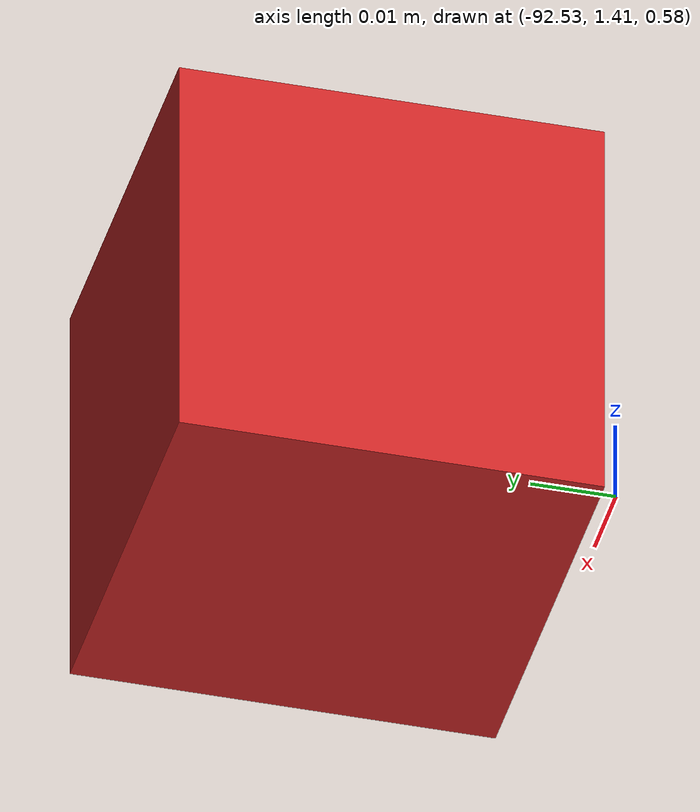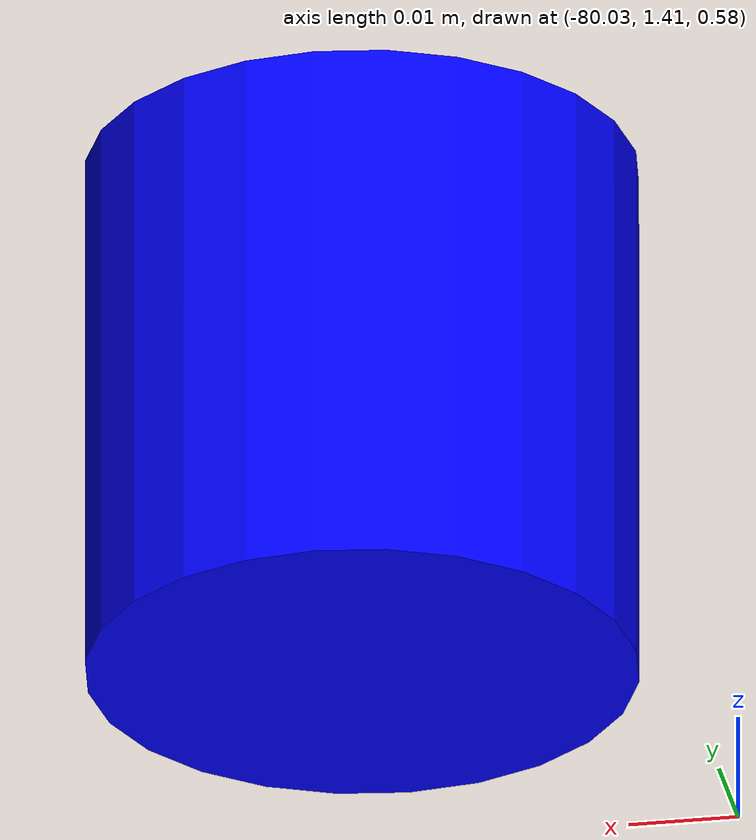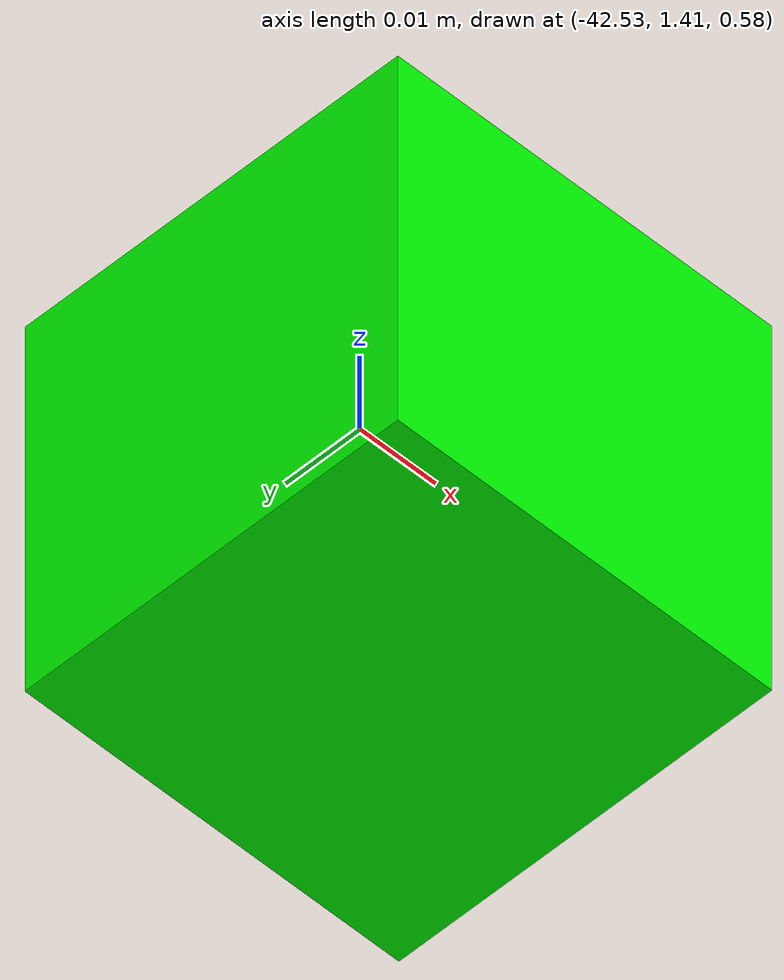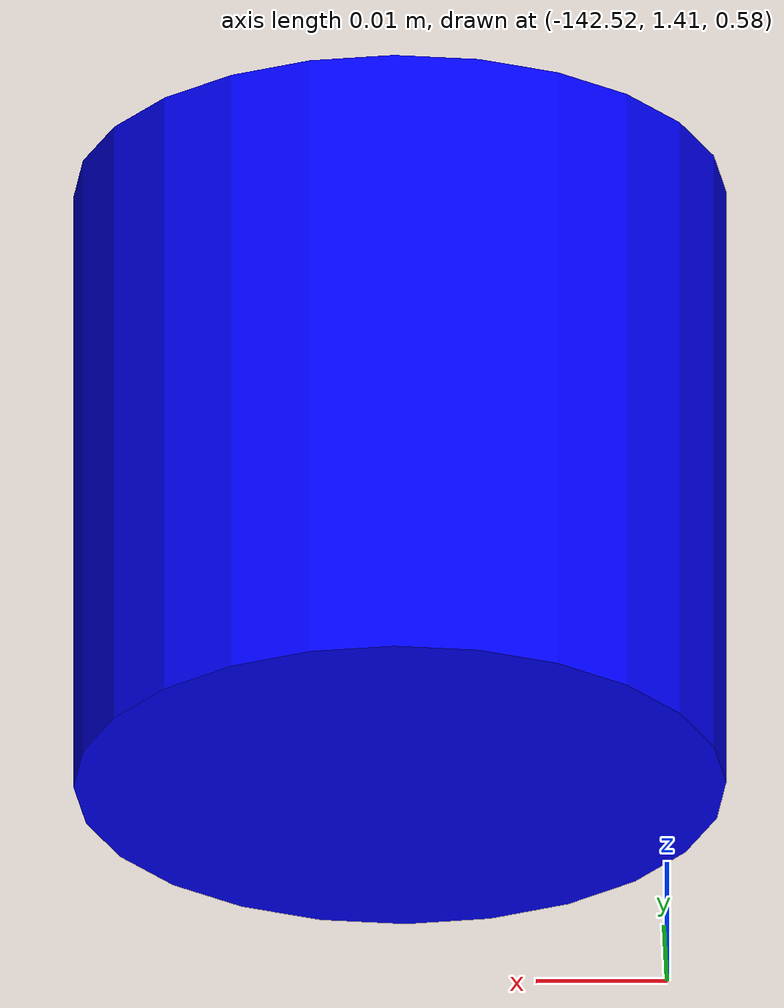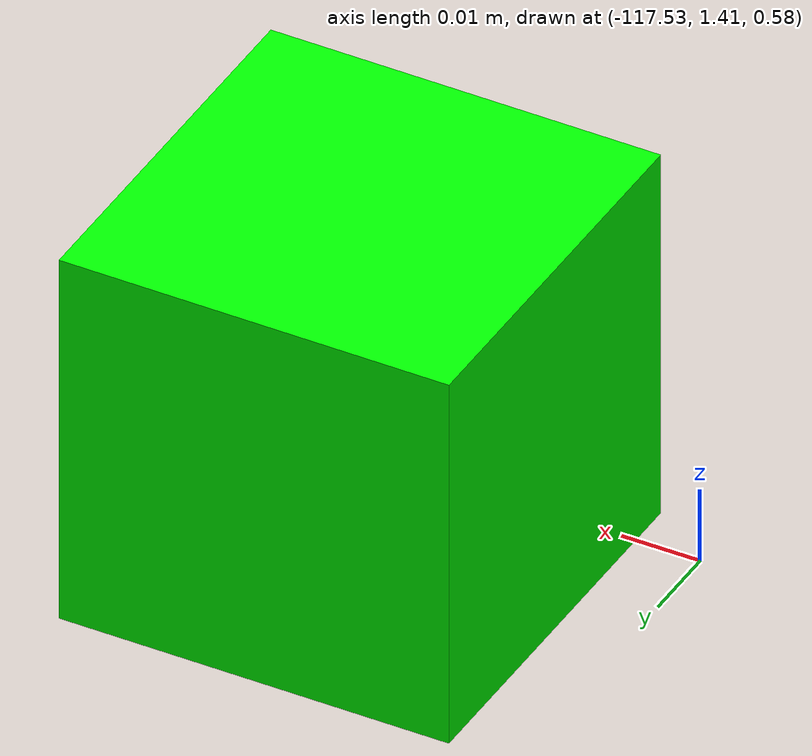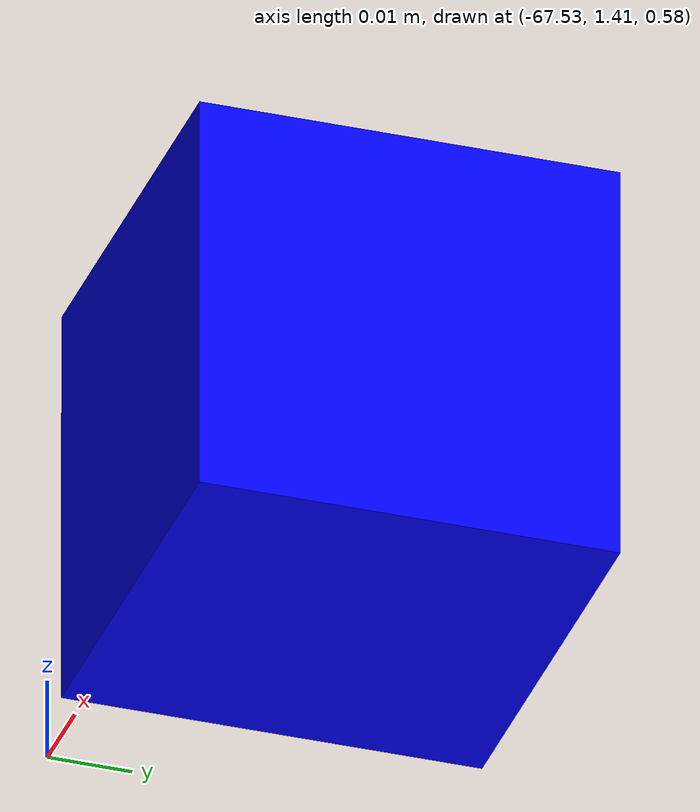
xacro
<robot name="objects">
      <link name="redBox1">
        <inertial>
          <origin xyz="0.11 1.435 0.61" />
          <mass value="0.985" />
          <inertia  ixx="0.0004104" ixy="0.0"  ixz="0.0"  iyy="0.0004104"  iyz="0.0"  izz="0.0004104" />
        </inertial>
        <visual>
          <origin xyz="0.11 1.435 0.61"/>
         <geometry>
           <box size="0.05 0.05 0.05" />
         </geometry>
       </visual>
       <collision>
         <origin xyz="0.11 1.435 0.61"/>
         <geometry>
           <box size="0.05 0.05 0.05" />
         </geometry>
       </collision>
     </link>

     <gazebo reference="redBox1">
       <material>Gazebo/Red</material>
       <kp>100000000.0</kp>
        <kd>1000.0</kd>
        <mu1>100000.0</mu1>
        <mu2>100000.0</mu2>
        <minDepth>0.000001</minDepth>
      </gazebo>

      <link name="redBox0">
        <inertial>
          <origin xyz="-5.00 1.5 0.61" />
          <mass value="0.985" />
          <inertia  ixx="0.0004104" ixy="0.0"  ixz="0.0"  iyy="0.0004104"  iyz="0.0"  izz="0.0004104" />
        </inertial>
        <visual>
          <origin xyz="-5.00 1.5 0.61"/>
         <geometry>
           <box size="0.05 0.05 0.05" />
         </geometry>
       </visual>
       <collision>
         <origin xyz="-5.00 1.5 0.61"/>
         <geometry>
           <box size="0.05 0.05 0.05" />
         </geometry>
       </collision>
     </link>

     <gazebo reference="redBox0">
       <material>Gazebo/Red</material>
      </gazebo>

      <link name="blueBox1">
        <inertial>
          <origin xyz="-17.5 1.435 0.61" />
          <mass value="0.985" />
          <inertia  ixx="0.0004104" ixy="0.0"  ixz="0.0"  iyy="0.0004104"  iyz="0.0"  izz="0.0004104" />
        </inertial>
        <visual>
          <origin xyz="-17.5 1.435 0.61"/>
         <geometry>
           <box size="0.05 0.05 0.05" />
         </geometry>
         <material name="">
                <color rgba="0.0 0.0 1.0 1.0"/>
                <texture filename=""/>
            </material>
       </visual>
       <collision>
         <origin xyz="-17.5 1.435 0.61"/>
         <geometry>
           <box size="0.05 0.05 0.05" />
         </geometry>
       </collision>
     </link>
     <gazebo reference="blueBox1">
       <material>Gazebo/Blue</material>
      </gazebo>

      <joint name="joint0" type="floating">
        <origin xyz="0 0 0" rpy="0 0 0"/>
        <parent link="redBox1"/>
       <child link="redBox0"/>

        <calibration rising="0.0"/>
        <dynamics damping="0.0" friction="0.0"/>
        <limit effort="30" velocity="1.0" lower="-2.2" upper="0.7" />
        <safety_controller k_velocity="10" k_position="15" soft_lower_limit="-2.0" soft_upper_limit="0.5" />
    </joint>

      <joint name="joint1" type="floating">
        <origin xyz="0 0 0" rpy="0 0 0"/>
        <parent link="redBox1"/>
       <child link="blueBox1"/>

        <calibration rising="0.0"/>
        <dynamics damping="0.0" friction="0.0"/>
        <limit effort="30" velocity="1.0" lower="-2.2" upper="0.7" />
        <safety_controller k_velocity="10" k_position="15" soft_lower_limit="-2.0" soft_upper_limit="0.5" />
    </joint>

      <link name="greenCylinder1">
        <inertial>
          <origin xyz="-30 1.435 0.61" />
          <mass value="0.773" />
          <inertia  ixx="0.0002818" ixy="0.0"  ixz="0.0"  iyy="0.0002818"  iyz="0.0"  izz="0.0002416" />
        </inertial>
        <visual>
          <origin xyz="-30 1.435 0.61"/>
         <geometry>
           <cylinder length="0.05" radius="0.025"/>
         </geometry>
         <material name="">
                <color rgba="0.0 1.0 0.0 1.0"/>
                <texture filename=""/>
            </material>
       </visual>
       <collision>
         <origin xyz="-30 1.435 0.61"/>
         <geometry>
           <cylinder length="0.05" radius="0.025"/>
         </geometry>
       </collision>
     </link>
     <gazebo reference="greenCylinder1">
       <material>Gazebo/Green</material>
      </gazebo>

       <joint name="joint2" type="floating">
        <origin xyz="0 0 0" rpy="0 0 0"/>
        <parent link="redBox1"/>
       <child link="greenCylinder1"/>

        <calibration rising="0.0"/>
        <dynamics damping="0.0" friction="0.0"/>
        <limit effort="30" velocity="1.0" lower="-2.2" upper="0.7" />
        <safety_controller k_velocity="10" k_position="15" soft_lower_limit="-2.0" soft_upper_limit="0.5" />
    </joint>

      <link name="greenBox1">
        <inertial>
          <origin xyz="-42.5 1.435 0.61" />
          <mass value="0.985" />
          <inertia  ixx="0.0004104" ixy="0.0"  ixz="0.0"  iyy="0.0004104"  iyz="0.0"  izz="0.0004104" />
        </inertial>
        <visual>
          <origin xyz="-42.5 1.435 0.61"/>
         <geometry>
           <box size="0.05 0.05 0.05" />
         </geometry>
         <material name="">
                <color rgba="0.0 1.0 0.0 1.0"/>
                <texture filename=""/>
            </material>
       </visual>
       <collision>
         <origin xyz="-42.5 1.435 0.61"/>
         <geometry>
           <box size="0.05 0.05 0.05" />
         </geometry>
       </collision>
     </link>
     <gazebo reference="greenBox1">
       <material>Gazebo/Green</material>
      </gazebo>

      <joint name="joint3" type="floating">
        <origin xyz="0 0 0" rpy="0 0 0"/>
        <parent link="redBox1"/>
       <child link="greenBox1"/>

        <calibration rising="0.0"/>
        <dynamics damping="0.0" friction="0.0"/>
        <limit effort="30" velocity="1.0" lower="-2.2" upper="0.7" />
        <safety_controller k_velocity="10" k_position="15" soft_lower_limit="-2.0" soft_upper_limit="0.5" />
    </joint>

    <link name="redCylinder1">
        <inertial>
          <origin xyz="-55 1.435 0.61" />
          <mass value="0.773" />
          <inertia  ixx="0.0002818" ixy="0.0"  ixz="0.0"  iyy="0.0002818"  iyz="0.0"  izz="0.0002416" />
        </inertial>
        <visual>
          <origin xyz="-55 1.435 0.61"/>
         <geometry>
           <cylinder length="0.05" radius="0.025"/>
         </geometry>
         <material name="">
                <color rgba="1.0 0.0 0.0 1.0"/>
                <texture filename=""/>
            </material>
       </visual>
       <collision>
         <origin xyz="-55 1.435 0.61"/>
         <geometry>
           <cylinder length="0.05" radius="0.025"/>
         </geometry>
       </collision>
     </link>
     <gazebo reference="redCylinder1">
       <material>Gazebo/Red</material>
      </gazebo>

       <joint name="joint4" type="floating">
        <origin xyz="0 0 0" rpy="0 0 0"/>
        <parent link="redBox1"/>
       <child link="redCylinder1"/>

        <calibration rising="0.0"/>
        <dynamics damping="0.0" friction="0.0"/>
        <limit effort="30" velocity="1.0" lower="-2.2" upper="0.7" />
        <safety_controller k_velocity="10" k_position="15" soft_lower_limit="-2.0" soft_upper_limit="0.5" />
    </joint>

      <link name="blueBox2">
        <inertial>
          <origin xyz="-67.5 1.435 0.61" />
          <mass value="0.985" />
          <inertia  ixx="0.0004104" ixy="0.0"  ixz="0.0"  iyy="0.0004104"  iyz="0.0"  izz="0.0004104" />
        </inertial>
        <visual>
          <origin xyz="-67.5 1.435 0.61"/>
         <geometry>
           <box size="0.05 0.05 0.05" />
         </geometry>
         <material name="">
                <color rgba="0.0 0.0 1.0 1.0"/>
                <texture filename=""/>
            </material>
       </visual>
       <collision>
         <origin xyz="-67.5 1.435 0.61"/>
         <geometry>
           <box size="0.05 0.05 0.05" />
         </geometry>
       </collision>
     </link>
     <gazebo reference="blueBox2">
       <material>Gazebo/Blue</material>
      </gazebo>

      <joint name="joint5" type="floating">
        <origin xyz="0 0 0" rpy="0 0 0"/>
        <parent link="redBox1"/>
       <child link="blueBox2"/>

        <calibration rising="0.0"/>
        <dynamics damping="0.0" friction="0.0"/>
        <limit effort="30" velocity="1.0" lower="-2.2" upper="0.7" />
        <safety_controller k_velocity="10" k_position="15" soft_lower_limit="-2.0" soft_upper_limit="0.5" />
    </joint>

    <link name="blueCylinder1">
        <inertial>
          <origin xyz="-80 1.435 0.61" />
          <mass value="0.773" />
          <inertia  ixx="0.0002818" ixy="0.0"  ixz="0.0"  iyy="0.0002818"  iyz="0.0"  izz="0.0002416" />
        </inertial>
        <visual>
          <origin xyz="-80 1.435 0.61"/>
         <geometry>
           <cylinder length="0.05" radius="0.025"/>
         </geometry>
         <material name="">
                <color rgba="0.0 0.0 1.0 1.0"/>
                <texture filename=""/>
            </material>
       </visual>
       <collision>
         <origin xyz="-80 1.435 0.61"/>
         <geometry>
           <cylinder length="0.05" radius="0.025"/>
         </geometry>
       </collision>
     </link>
     <gazebo reference="blueCylinder1">
       <material>Gazebo/Blue</material>
      </gazebo>

       <joint name="joint6" type="floating">
        <origin xyz="0 0 0" rpy="0 0 0"/>
        <parent link="redBox1"/>
       <child link="blueCylinder1"/>

        <calibration rising="0.0"/>
        <dynamics damping="0.0" friction="0.0"/>
        <limit effort="30" velocity="1.0" lower="-2.2" upper="0.7" />
        <safety_controller k_velocity="10" k_position="15" soft_lower_limit="-2.0" soft_upper_limit="0.5" />
    </joint>

      <link name="redBox2">
        <inertial>
          <origin xyz="-92.5 1.435 0.61" />
          <mass value="0.985" />
          <inertia  ixx="0.0004104" ixy="0.0"  ixz="0.0"  iyy="0.0004104"  iyz="0.0"  izz="0.0004104" />
        </inertial>
        <visual>
          <origin xyz="-92.5 1.435 0.61"/>
         <geometry>
           <box size="0.05 0.05 0.05" />
         </geometry>
       </visual>
       <collision>
         <origin xyz="-92.5 1.435 0.61"/>
         <geometry>
           <box size="0.05 0.05 0.05" />
         </geometry>
       </collision>
     </link>
     <gazebo reference="redBox2">
       <material>Gazebo/Red</material>
      </gazebo>

      <joint name="joint7" type="floating">
        <origin xyz="0 0 0" rpy="0 0 0"/>
        <parent link="redBox1"/>
       <child link="redBox2"/>

        <calibration rising="0.0"/>
        <dynamics damping="0.0" friction="0.0"/>
        <limit effort="30" velocity="1.0" lower="-2.2" upper="0.7" />
        <safety_controller k_velocity="10" k_position="15" soft_lower_limit="-2.0" soft_upper_limit="0.5" />
    </joint>

    <link name="redCylinder2">
        <inertial>
          <origin xyz="-105 1.435 0.61" />
          <mass value="0.773" />
          <inertia  ixx="0.0002818" ixy="0.0"  ixz="0.0"  iyy="0.0002818"  iyz="0.0"  izz="0.0002416" />
        </inertial>
        <visual>
          <origin xyz="-105 1.435 0.61"/>
         <geometry>
           <cylinder length="0.05" radius="0.025"/>
         </geometry>
         <material name="">
                <color rgba="1.0 0.0 0.0 1.0"/>
                <texture filename=""/>
            </material>
       </visual>
       <collision>
         <origin xyz="-105 1.435 0.61"/>
         <geometry>
           <cylinder length="0.05" radius="0.025"/>
         </geometry>
       </collision>
     </link>
     <gazebo reference="redCylinder2">
       <material>Gazebo/Red</material>
      </gazebo>

       <joint name="joint8" type="floating">
        <origin xyz="0 0 0" rpy="0 0 0"/>
        <parent link="redBox1"/>
       <child link="redCylinder2"/>

        <calibration rising="0.0"/>
        <dynamics damping="0.0" friction="0.0"/>
        <limit effort="30" velocity="1.0" lower="-2.2" upper="0.7" />
        <safety_controller k_velocity="10" k_position="15" soft_lower_limit="-2.0" soft_upper_limit="0.5" />
    </joint>

      <link name="greenBox2">
        <inertial>
          <origin xyz="-117.5 1.435 0.61" />
          <mass value="0.985" />
          <inertia  ixx="0.0004104" ixy="0.0"  ixz="0.0"  iyy="0.0004104"  iyz="0.0"  izz="0.0004104" />
        </inertial>
        <visual>
          <origin xyz="-117.5 1.435 0.61"/>
         <geometry>
           <box size="0.05 0.05 0.05" />
         </geometry>
         <material name="">
                <color rgba="0.0 1.0 0.0 1.0"/>
                <texture filename=""/>
            </material>
       </visual>
       <collision>
         <origin xyz="-117.5 1.435 0.61"/>
         <geometry>
           <box size="0.05 0.05 0.05" />
         </geometry>
       </collision>
     </link>
     <gazebo reference="greenBox2">
       <material>Gazebo/Green</material>
      </gazebo>

      <joint name="joint9" type="floating">
        <origin xyz="0 0 0" rpy="0 0 0"/>
        <parent link="redBox1"/>
       <child link="greenBox2"/>

        <calibration rising="0.0"/>
        <dynamics damping="0.0" friction="0.0"/>
        <limit effort="30" velocity="1.0" lower="-2.2" upper="0.7" />
        <safety_controller k_velocity="10" k_position="15" soft_lower_limit="-2.0" soft_upper_limit="0.5" />
    </joint>

    <link name="greenCylinder2">
        <inertial>
          <origin xyz="-130 1.435 0.61" />
          <mass value="0.773" />
          <inertia  ixx="0.0002818" ixy="0.0"  ixz="0.0"  iyy="0.0002818"  iyz="0.0"  izz="0.0002416" />
        </inertial>
        <visual>
          <origin xyz="-130 1.435 0.61"/>
         <geometry>
           <cylinder length="0.05" radius="0.025"/>
         </geometry>
         <material name="">
                <color rgba="0.0 1.0 0.0 1.0"/>
                <texture filename=""/>
            </material>
       </visual>
       <collision>
         <origin xyz="-130 1.435 0.61"/>
         <geometry>
           <cylinder length="0.05" radius="0.025"/>
         </geometry>
       </collision>
     </link>
     <gazebo reference="greenCylinder2">
       <material>Gazebo/Green</material>
      </gazebo>

       <joint name="joint10" type="floating">
        <origin xyz="0 0 0" rpy="0 0 0"/>
        <parent link="redBox1"/>
       <child link="greenCylinder2"/>

        <calibration rising="0.0"/>
        <dynamics damping="0.0" friction="0.0"/>
        <limit effort="30" velocity="1.0" lower="-2.2" upper="0.7" />
        <safety_controller k_velocity="10" k_position="15" soft_lower_limit="-2.0" soft_upper_limit="0.5" />
    </joint>

    <link name="blueCylinder2">
        <inertial>
          <origin xyz="-142.5 1.435 0.61" />
          <mass value="0.773" />
          <inertia  ixx="0.0002818" ixy="0.0"  ixz="0.0"  iyy="0.0002818"  iyz="0.0"  izz="0.0002416" />
        </inertial>
        <visual>
          <origin xyz="-142.5 1.435 0.61"/>
         <geometry>
           <cylinder length="0.05" radius="0.025"/>
         </geometry>
         <material name="">
                <color rgba="0.0 0.0 1.0 1.0"/>
                <texture filename=""/>
            </material>
       </visual>
       <collision>
         <origin xyz="-142.5 1.435 0.61"/>
         <geometry>
           <cylinder length="0.05" radius="0.025"/>
         </geometry>
       </collision>
     </link>
     <gazebo reference="blueCylinder2">
       <material>Gazebo/Blue</material>
      </gazebo>

       <joint name="joint11" type="floating">
        <origin xyz="0 0 0" rpy="0 0 0"/>
        <parent link="redBox1"/>
       <child link="blueCylinder2"/>

        <calibration rising="0.0"/>
        <dynamics damping="0.0" friction="0.0"/>
        <limit effort="30" velocity="1.0" lower="-2.2" upper="0.7" />
        <safety_controller k_velocity="10" k_position="15" soft_lower_limit="-2.0" soft_upper_limit="0.5" />
    </joint>

  </robot>
